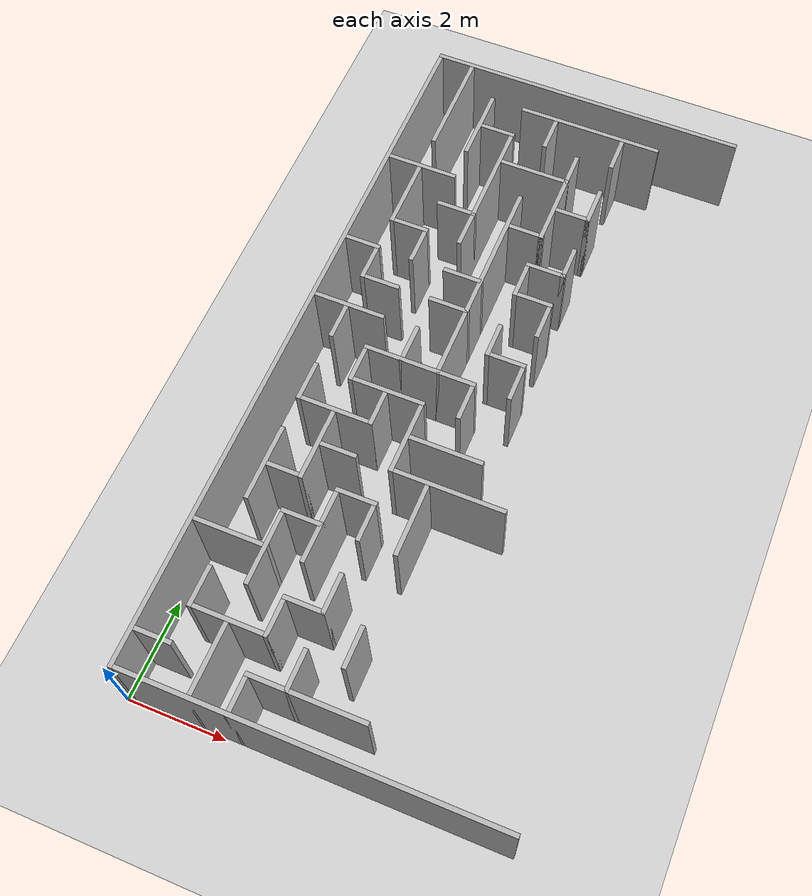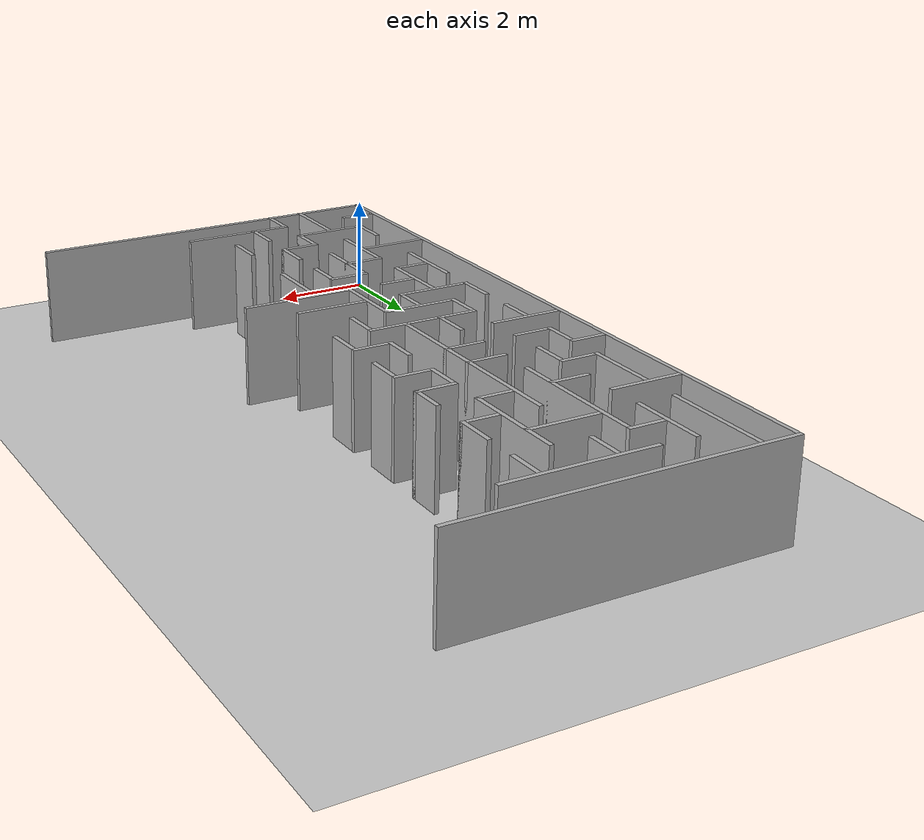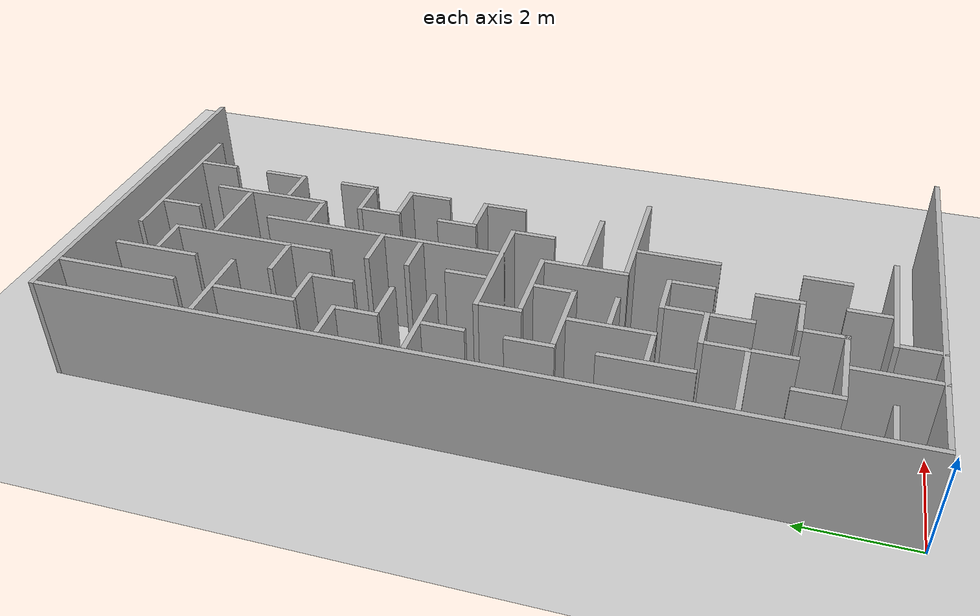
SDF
<sdf version="1.6">
 <world name="slam_world">
  <model name="ground_plane">
   <static>true</static>
   <link name="link">
    <collision name="collision">
     <geometry><plane><normal>0 0 1</normal><size>100 100</size></plane></geometry>
    </collision>
    <visual name="visual">
     <geometry><plane><normal>0 0 1</normal><size>100 100</size></plane></geometry>
     <material>
      <ambient>0.8 0.8 0.8 1</ambient>
      <diffuse>0.8 0.8 0.8 1</diffuse>
      <specular>0.8 0.8 0.8 1</specular>
     </material>
    </visual>
   </link>
  </model>
  <model name="wall_0">
   <static>true</static>
   <pose>3.425925925925926 14.907407407407408 1.0 0 0 0</pose>
   <link name="link">
    <collision name="collision">
     <geometry><box><size>6.7592592592592595 0.0925925925925926 2.0</size></box></geometry>
    </collision>
    <visual name="visual">
     <geometry><box><size>6.7592592592592595 0.0925925925925926 2.0</size></box></geometry>
     <material><ambient>0.5 0.5 0.5 1</ambient><diffuse>0.7 0.7 0.7 1</diffuse></material>
    </visual>
   </link>
  </model>
  <model name="wall_2">
   <static>true</static>
   <pose>0.0925925925925926 7.453703703703704 1.0 0 0 0</pose>
   <link name="link">
    <collision name="collision">
     <geometry><box><size>0.0925925925925926 14.814814814814817 2.0</size></box></geometry>
    </collision>
    <visual name="visual">
     <geometry><box><size>0.0925925925925926 14.814814814814817 2.0</size></box></geometry>
     <material><ambient>0.5 0.5 0.5 1</ambient><diffuse>0.7 0.7 0.7 1</diffuse></material>
    </visual>
   </link>
  </model>
  <model name="wall_3">
   <static>true</static>
   <pose>0.8333333333333334 13.750000000000002 1.0 0 0 0</pose>
   <link name="link">
    <collision name="collision">
     <geometry><box><size>0.0925925925925926 2.2222222222222223 2.0</size></box></geometry>
    </collision>
    <visual name="visual">
     <geometry><box><size>0.0925925925925926 2.2222222222222223 2.0</size></box></geometry>
     <material><ambient>0.5 0.5 0.5 1</ambient><diffuse>0.7 0.7 0.7 1</diffuse></material>
    </visual>
   </link>
  </model>
  <model name="wall_7">
   <static>true</static>
   <pose>1.5740740740740742 13.425925925925927 1.0 0 0 0</pose>
   <link name="link">
    <collision name="collision">
     <geometry><box><size>0.0925925925925926 1.5740740740740742 2.0</size></box></geometry>
    </collision>
    <visual name="visual">
     <geometry><box><size>0.0925925925925926 1.5740740740740742 2.0</size></box></geometry>
     <material><ambient>0.5 0.5 0.5 1</ambient><diffuse>0.7 0.7 0.7 1</diffuse></material>
    </visual>
   </link>
  </model>
  <model name="wall_8">
   <static>true</static>
   <pose>3.7962962962962967 14.166666666666668 1.0 0 0 0</pose>
   <link name="link">
    <collision name="collision">
     <geometry><box><size>3.055555555555556 0.0925925925925926 2.0</size></box></geometry>
    </collision>
    <visual name="visual">
     <geometry><box><size>3.055555555555556 0.0925925925925926 2.0</size></box></geometry>
     <material><ambient>0.5 0.5 0.5 1</ambient><diffuse>0.7 0.7 0.7 1</diffuse></material>
    </visual>
   </link>
  </model>
  <model name="wall_13">
   <static>true</static>
   <pose>3.055555555555556 13.750000000000002 1.0 0 0 0</pose>
   <link name="link">
    <collision name="collision">
     <geometry><box><size>0.0925925925925926 0.7407407407407408 2.0</size></box></geometry>
    </collision>
    <visual name="visual">
     <geometry><box><size>0.0925925925925926 0.7407407407407408 2.0</size></box></geometry>
     <material><ambient>0.5 0.5 0.5 1</ambient><diffuse>0.7 0.7 0.7 1</diffuse></material>
    </visual>
   </link>
  </model>
  <model name="wall_14">
   <static>true</static>
   <pose>4.537037037037037 13.750000000000002 1.0 0 0 0</pose>
   <link name="link">
    <collision name="collision">
     <geometry><box><size>0.0925925925925926 0.7407407407407408 2.0</size></box></geometry>
    </collision>
    <visual name="visual">
     <geometry><box><size>0.0925925925925926 0.7407407407407408 2.0</size></box></geometry>
     <material><ambient>0.5 0.5 0.5 1</ambient><diffuse>0.7 0.7 0.7 1</diffuse></material>
    </visual>
   </link>
  </model>
  <model name="wall_20">
   <static>true</static>
   <pose>1.990740740740741 13.425925925925927 1.0 0 0 0</pose>
   <link name="link">
    <collision name="collision">
     <geometry><box><size>0.7407407407407408 0.0925925925925926 2.0</size></box></geometry>
    </collision>
    <visual name="visual">
     <geometry><box><size>0.7407407407407408 0.0925925925925926 2.0</size></box></geometry>
     <material><ambient>0.5 0.5 0.5 1</ambient><diffuse>0.7 0.7 0.7 1</diffuse></material>
    </visual>
   </link>
  </model>
  <model name="wall_27">
   <static>true</static>
   <pose>2.314814814814815 11.898148148148149 1.0 0 0 0</pose>
   <link name="link">
    <collision name="collision">
     <geometry><box><size>0.0925925925925926 2.9629629629629632 2.0</size></box></geometry>
    </collision>
    <visual name="visual">
     <geometry><box><size>0.0925925925925926 2.9629629629629632 2.0</size></box></geometry>
     <material><ambient>0.5 0.5 0.5 1</ambient><diffuse>0.7 0.7 0.7 1</diffuse></material>
    </visual>
   </link>
  </model>
  <model name="wall_28">
   <static>true</static>
   <pose>3.7962962962962967 12.268518518518519 1.0 0 0 0</pose>
   <link name="link">
    <collision name="collision">
     <geometry><box><size>0.0925925925925926 2.2222222222222223 2.0</size></box></geometry>
    </collision>
    <visual name="visual">
     <geometry><box><size>0.0925925925925926 2.2222222222222223 2.0</size></box></geometry>
     <material><ambient>0.5 0.5 0.5 1</ambient><diffuse>0.7 0.7 0.7 1</diffuse></material>
    </visual>
   </link>
  </model>
  <model name="wall_33">
   <static>true</static>
   <pose>3.101851851851852 12.685185185185187 1.0 0 0 0</pose>
   <link name="link">
    <collision name="collision">
     <geometry><box><size>1.4814814814814816 0.0925925925925926 2.0</size></box></geometry>
    </collision>
    <visual name="visual">
     <geometry><box><size>1.4814814814814816 0.0925925925925926 2.0</size></box></geometry>
     <material><ambient>0.5 0.5 0.5 1</ambient><diffuse>0.7 0.7 0.7 1</diffuse></material>
    </visual>
   </link>
  </model>
  <model name="wall_34">
   <static>true</static>
   <pose>4.537037037037037 12.314814814814817 1.0 0 0 0</pose>
   <link name="link">
    <collision name="collision">
     <geometry><box><size>0.0925925925925926 0.8333333333333334 2.0</size></box></geometry>
    </collision>
    <visual name="visual">
     <geometry><box><size>0.0925925925925926 0.8333333333333334 2.0</size></box></geometry>
     <material><ambient>0.5 0.5 0.5 1</ambient><diffuse>0.7 0.7 0.7 1</diffuse></material>
    </visual>
   </link>
  </model>
  <model name="wall_39">
   <static>true</static>
   <pose>0.8796296296296298 11.944444444444446 1.0 0 0 0</pose>
   <link name="link">
    <collision name="collision">
     <geometry><box><size>1.4814814814814816 0.0925925925925926 2.0</size></box></geometry>
    </collision>
    <visual name="visual">
     <geometry><box><size>1.4814814814814816 0.0925925925925926 2.0</size></box></geometry>
     <material><ambient>0.5 0.5 0.5 1</ambient><diffuse>0.7 0.7 0.7 1</diffuse></material>
    </visual>
   </link>
  </model>
  <model name="wall_40">
   <static>true</static>
   <pose>3.055555555555556 9.722222222222223 1.0 0 0 0</pose>
   <link name="link">
    <collision name="collision">
     <geometry><box><size>0.0925925925925926 4.537037037037037 2.0</size></box></geometry>
    </collision>
    <visual name="visual">
     <geometry><box><size>0.0925925925925926 4.537037037037037 2.0</size></box></geometry>
     <material><ambient>0.5 0.5 0.5 1</ambient><diffuse>0.7 0.7 0.7 1</diffuse></material>
    </visual>
   </link>
  </model>
  <model name="wall_41">
   <static>true</static>
   <pose>4.212962962962964 11.944444444444446 1.0 0 0 0</pose>
   <link name="link">
    <collision name="collision">
     <geometry><box><size>0.7407407407407408 0.0925925925925926 2.0</size></box></geometry>
    </collision>
    <visual name="visual">
     <geometry><box><size>0.7407407407407408 0.0925925925925926 2.0</size></box></geometry>
     <material><ambient>0.5 0.5 0.5 1</ambient><diffuse>0.7 0.7 0.7 1</diffuse></material>
    </visual>
   </link>
  </model>
  <model name="wall_44">
   <static>true</static>
   <pose>0.8333333333333334 11.157407407407408 1.0 0 0 0</pose>
   <link name="link">
    <collision name="collision">
     <geometry><box><size>0.0925925925925926 1.4814814814814816 2.0</size></box></geometry>
    </collision>
    <visual name="visual">
     <geometry><box><size>0.0925925925925926 1.4814814814814816 2.0</size></box></geometry>
     <material><ambient>0.5 0.5 0.5 1</ambient><diffuse>0.7 0.7 0.7 1</diffuse></material>
    </visual>
   </link>
  </model>
  <model name="wall_46">
   <static>true</static>
   <pose>1.9444444444444446 11.203703703703704 1.0 0 0 0</pose>
   <link name="link">
    <collision name="collision">
     <geometry><box><size>0.8333333333333334 0.0925925925925926 2.0</size></box></geometry>
    </collision>
    <visual name="visual">
     <geometry><box><size>0.8333333333333334 0.0925925925925926 2.0</size></box></geometry>
     <material><ambient>0.5 0.5 0.5 1</ambient><diffuse>0.7 0.7 0.7 1</diffuse></material>
    </visual>
   </link>
  </model>
  <model name="wall_47">
   <static>true</static>
   <pose>3.4722222222222228 11.203703703703704 1.0 0 0 0</pose>
   <link name="link">
    <collision name="collision">
     <geometry><box><size>0.7407407407407408 0.0925925925925926 2.0</size></box></geometry>
    </collision>
    <visual name="visual">
     <geometry><box><size>0.7407407407407408 0.0925925925925926 2.0</size></box></geometry>
     <material><ambient>0.5 0.5 0.5 1</ambient><diffuse>0.7 0.7 0.7 1</diffuse></material>
    </visual>
   </link>
  </model>
  <model name="wall_53">
   <static>true</static>
   <pose>4.537037037037037 10.787037037037038 1.0 0 0 0</pose>
   <link name="link">
    <collision name="collision">
     <geometry><box><size>0.0925925925925926 0.7407407407407408 2.0</size></box></geometry>
    </collision>
    <visual name="visual">
     <geometry><box><size>0.0925925925925926 0.7407407407407408 2.0</size></box></geometry>
     <material><ambient>0.5 0.5 0.5 1</ambient><diffuse>0.7 0.7 0.7 1</diffuse></material>
    </visual>
   </link>
  </model>
  <model name="wall_55">
   <static>true</static>
   <pose>1.2500000000000002 10.462962962962964 1.0 0 0 0</pose>
   <link name="link">
    <collision name="collision">
     <geometry><box><size>0.7407407407407408 0.0925925925925926 2.0</size></box></geometry>
    </collision>
    <visual name="visual">
     <geometry><box><size>0.7407407407407408 0.0925925925925926 2.0</size></box></geometry>
     <material><ambient>0.5 0.5 0.5 1</ambient><diffuse>0.7 0.7 0.7 1</diffuse></material>
    </visual>
   </link>
  </model>
  <model name="wall_56">
   <static>true</static>
   <pose>4.166666666666667 10.462962962962964 1.0 0 0 0</pose>
   <link name="link">
    <collision name="collision">
     <geometry><box><size>0.8333333333333334 0.0925925925925926 2.0</size></box></geometry>
    </collision>
    <visual name="visual">
     <geometry><box><size>0.8333333333333334 0.0925925925925926 2.0</size></box></geometry>
     <material><ambient>0.5 0.5 0.5 1</ambient><diffuse>0.7 0.7 0.7 1</diffuse></material>
    </visual>
   </link>
  </model>
  <model name="wall_63">
   <static>true</static>
   <pose>1.5740740740740742 10.046296296296298 1.0 0 0 0</pose>
   <link name="link">
    <collision name="collision">
     <geometry><box><size>0.0925925925925926 0.7407407407407408 2.0</size></box></geometry>
    </collision>
    <visual name="visual">
     <geometry><box><size>0.0925925925925926 0.7407407407407408 2.0</size></box></geometry>
     <material><ambient>0.5 0.5 0.5 1</ambient><diffuse>0.7 0.7 0.7 1</diffuse></material>
    </visual>
   </link>
  </model>
  <model name="wall_64">
   <static>true</static>
   <pose>3.7962962962962967 10.046296296296298 1.0 0 0 0</pose>
   <link name="link">
    <collision name="collision">
     <geometry><box><size>0.0925925925925926 0.7407407407407408 2.0</size></box></geometry>
    </collision>
    <visual name="visual">
     <geometry><box><size>0.0925925925925926 0.7407407407407408 2.0</size></box></geometry>
     <material><ambient>0.5 0.5 0.5 1</ambient><diffuse>0.7 0.7 0.7 1</diffuse></material>
    </visual>
   </link>
  </model>
  <model name="wall_66">
   <static>true</static>
   <pose>0.5092592592592593 9.722222222222223 1.0 0 0 0</pose>
   <link name="link">
    <collision name="collision">
     <geometry><box><size>0.7407407407407408 0.0925925925925926 2.0</size></box></geometry>
    </collision>
    <visual name="visual">
     <geometry><box><size>0.7407407407407408 0.0925925925925926 2.0</size></box></geometry>
     <material><ambient>0.5 0.5 0.5 1</ambient><diffuse>0.7 0.7 0.7 1</diffuse></material>
    </visual>
   </link>
  </model>
  <model name="wall_67">
   <static>true</static>
   <pose>2.6851851851851856 9.722222222222223 1.0 0 0 0</pose>
   <link name="link">
    <collision name="collision">
     <geometry><box><size>0.8333333333333334 0.0925925925925926 2.0</size></box></geometry>
    </collision>
    <visual name="visual">
     <geometry><box><size>0.8333333333333334 0.0925925925925926 2.0</size></box></geometry>
     <material><ambient>0.5 0.5 0.5 1</ambient><diffuse>0.7 0.7 0.7 1</diffuse></material>
    </visual>
   </link>
  </model>
  <model name="wall_68">
   <static>true</static>
   <pose>4.212962962962964 9.722222222222223 1.0 0 0 0</pose>
   <link name="link">
    <collision name="collision">
     <geometry><box><size>0.7407407407407408 0.0925925925925926 2.0</size></box></geometry>
    </collision>
    <visual name="visual">
     <geometry><box><size>0.7407407407407408 0.0925925925925926 2.0</size></box></geometry>
     <material><ambient>0.5 0.5 0.5 1</ambient><diffuse>0.7 0.7 0.7 1</diffuse></material>
    </visual>
   </link>
  </model>
  <model name="wall_74">
   <static>true</static>
   <pose>0.8333333333333334 9.305555555555557 1.0 0 0 0</pose>
   <link name="link">
    <collision name="collision">
     <geometry><box><size>0.0925925925925926 0.7407407407407408 2.0</size></box></geometry>
    </collision>
    <visual name="visual">
     <geometry><box><size>0.0925925925925926 0.7407407407407408 2.0</size></box></geometry>
     <material><ambient>0.5 0.5 0.5 1</ambient><diffuse>0.7 0.7 0.7 1</diffuse></material>
    </visual>
   </link>
  </model>
  <model name="wall_75">
   <static>true</static>
   <pose>4.537037037037037 9.305555555555557 1.0 0 0 0</pose>
   <link name="link">
    <collision name="collision">
     <geometry><box><size>0.0925925925925926 0.7407407407407408 2.0</size></box></geometry>
    </collision>
    <visual name="visual">
     <geometry><box><size>0.0925925925925926 0.7407407407407408 2.0</size></box></geometry>
     <material><ambient>0.5 0.5 0.5 1</ambient><diffuse>0.7 0.7 0.7 1</diffuse></material>
    </visual>
   </link>
  </model>
  <model name="wall_80">
   <static>true</static>
   <pose>1.2500000000000002 8.981481481481483 1.0 0 0 0</pose>
   <link name="link">
    <collision name="collision">
     <geometry><box><size>0.7407407407407408 0.0925925925925926 2.0</size></box></geometry>
    </collision>
    <visual name="visual">
     <geometry><box><size>0.7407407407407408 0.0925925925925926 2.0</size></box></geometry>
     <material><ambient>0.5 0.5 0.5 1</ambient><diffuse>0.7 0.7 0.7 1</diffuse></material>
    </visual>
   </link>
  </model>
  <model name="wall_81">
   <static>true</static>
   <pose>2.6851851851851856 8.981481481481483 1.0 0 0 0</pose>
   <link name="link">
    <collision name="collision">
     <geometry><box><size>0.8333333333333334 0.0925925925925926 2.0</size></box></geometry>
    </collision>
    <visual name="visual">
     <geometry><box><size>0.8333333333333334 0.0925925925925926 2.0</size></box></geometry>
     <material><ambient>0.5 0.5 0.5 1</ambient><diffuse>0.7 0.7 0.7 1</diffuse></material>
    </visual>
   </link>
  </model>
  <model name="wall_87">
   <static>true</static>
   <pose>3.7962962962962967 8.564814814814815 1.0 0 0 0</pose>
   <link name="link">
    <collision name="collision">
     <geometry><box><size>0.0925925925925926 0.7407407407407408 2.0</size></box></geometry>
    </collision>
    <visual name="visual">
     <geometry><box><size>0.0925925925925926 0.7407407407407408 2.0</size></box></geometry>
     <material><ambient>0.5 0.5 0.5 1</ambient><diffuse>0.7 0.7 0.7 1</diffuse></material>
    </visual>
   </link>
  </model>
  <model name="wall_91">
   <static>true</static>
   <pose>0.8796296296296298 8.240740740740742 1.0 0 0 0</pose>
   <link name="link">
    <collision name="collision">
     <geometry><box><size>1.4814814814814816 0.0925925925925926 2.0</size></box></geometry>
    </collision>
    <visual name="visual">
     <geometry><box><size>1.4814814814814816 0.0925925925925926 2.0</size></box></geometry>
     <material><ambient>0.5 0.5 0.5 1</ambient><diffuse>0.7 0.7 0.7 1</diffuse></material>
    </visual>
   </link>
  </model>
  <model name="wall_92">
   <static>true</static>
   <pose>2.314814814814815 7.870370370370371 1.0 0 0 0</pose>
   <link name="link">
    <collision name="collision">
     <geometry><box><size>0.0925925925925926 0.8333333333333334 2.0</size></box></geometry>
    </collision>
    <visual name="visual">
     <geometry><box><size>0.0925925925925926 0.8333333333333334 2.0</size></box></geometry>
     <material><ambient>0.5 0.5 0.5 1</ambient><diffuse>0.7 0.7 0.7 1</diffuse></material>
    </visual>
   </link>
  </model>
  <model name="wall_93">
   <static>true</static>
   <pose>4.212962962962964 8.240740740740742 1.0 0 0 0</pose>
   <link name="link">
    <collision name="collision">
     <geometry><box><size>0.7407407407407408 0.0925925925925926 2.0</size></box></geometry>
    </collision>
    <visual name="visual">
     <geometry><box><size>0.7407407407407408 0.0925925925925926 2.0</size></box></geometry>
     <material><ambient>0.5 0.5 0.5 1</ambient><diffuse>0.7 0.7 0.7 1</diffuse></material>
    </visual>
   </link>
  </model>
  <model name="wall_97">
   <static>true</static>
   <pose>0.8333333333333334 7.824074074074074 1.0 0 0 0</pose>
   <link name="link">
    <collision name="collision">
     <geometry><box><size>0.0925925925925926 0.7407407407407408 2.0</size></box></geometry>
    </collision>
    <visual name="visual">
     <geometry><box><size>0.0925925925925926 0.7407407407407408 2.0</size></box></geometry>
     <material><ambient>0.5 0.5 0.5 1</ambient><diffuse>0.7 0.7 0.7 1</diffuse></material>
    </visual>
   </link>
  </model>
  <model name="wall_98">
   <static>true</static>
   <pose>4.537037037037037 7.824074074074074 1.0 0 0 0</pose>
   <link name="link">
    <collision name="collision">
     <geometry><box><size>0.0925925925925926 0.7407407407407408 2.0</size></box></geometry>
    </collision>
    <visual name="visual">
     <geometry><box><size>0.0925925925925926 0.7407407407407408 2.0</size></box></geometry>
     <material><ambient>0.5 0.5 0.5 1</ambient><diffuse>0.7 0.7 0.7 1</diffuse></material>
    </visual>
   </link>
  </model>
  <model name="wall_102">
   <static>true</static>
   <pose>2.6851851851851856 7.500000000000001 1.0 0 0 0</pose>
   <link name="link">
    <collision name="collision">
     <geometry><box><size>2.314814814814815 0.0925925925925926 2.0</size></box></geometry>
    </collision>
    <visual name="visual">
     <geometry><box><size>2.314814814814815 0.0925925925925926 2.0</size></box></geometry>
     <material><ambient>0.5 0.5 0.5 1</ambient><diffuse>0.7 0.7 0.7 1</diffuse></material>
    </visual>
   </link>
  </model>
  <model name="wall_108">
   <static>true</static>
   <pose>1.5740740740740742 7.083333333333334 1.0 0 0 0</pose>
   <link name="link">
    <collision name="collision">
     <geometry><box><size>0.0925925925925926 0.7407407407407408 2.0</size></box></geometry>
    </collision>
    <visual name="visual">
     <geometry><box><size>0.0925925925925926 0.7407407407407408 2.0</size></box></geometry>
     <material><ambient>0.5 0.5 0.5 1</ambient><diffuse>0.7 0.7 0.7 1</diffuse></material>
    </visual>
   </link>
  </model>
  <model name="wall_109">
   <static>true</static>
   <pose>3.7962962962962967 7.083333333333334 1.0 0 0 0</pose>
   <link name="link">
    <collision name="collision">
     <geometry><box><size>0.0925925925925926 0.7407407407407408 2.0</size></box></geometry>
    </collision>
    <visual name="visual">
     <geometry><box><size>0.0925925925925926 0.7407407407407408 2.0</size></box></geometry>
     <material><ambient>0.5 0.5 0.5 1</ambient><diffuse>0.7 0.7 0.7 1</diffuse></material>
    </visual>
   </link>
  </model>
  <model name="wall_111">
   <static>true</static>
   <pose>0.8333333333333334 6.388888888888889 1.0 0 0 0</pose>
   <link name="link">
    <collision name="collision">
     <geometry><box><size>0.0925925925925926 0.8333333333333334 2.0</size></box></geometry>
    </collision>
    <visual name="visual">
     <geometry><box><size>0.0925925925925926 0.8333333333333334 2.0</size></box></geometry>
     <material><ambient>0.5 0.5 0.5 1</ambient><diffuse>0.7 0.7 0.7 1</diffuse></material>
    </visual>
   </link>
  </model>
  <model name="wall_112">
   <static>true</static>
   <pose>2.361111111111111 6.7592592592592595 1.0 0 0 0</pose>
   <link name="link">
    <collision name="collision">
     <geometry><box><size>1.4814814814814816 0.0925925925925926 2.0</size></box></geometry>
    </collision>
    <visual name="visual">
     <geometry><box><size>1.4814814814814816 0.0925925925925926 2.0</size></box></geometry>
     <material><ambient>0.5 0.5 0.5 1</ambient><diffuse>0.7 0.7 0.7 1</diffuse></material>
    </visual>
   </link>
  </model>
  <model name="wall_116">
   <static>true</static>
   <pose>2.314814814814815 6.3425925925925934 1.0 0 0 0</pose>
   <link name="link">
    <collision name="collision">
     <geometry><box><size>0.0925925925925926 0.7407407407407408 2.0</size></box></geometry>
    </collision>
    <visual name="visual">
     <geometry><box><size>0.0925925925925926 0.7407407407407408 2.0</size></box></geometry>
     <material><ambient>0.5 0.5 0.5 1</ambient><diffuse>0.7 0.7 0.7 1</diffuse></material>
    </visual>
   </link>
  </model>
  <model name="wall_117">
   <static>true</static>
   <pose>3.055555555555556 5.972222222222223 1.0 0 0 0</pose>
   <link name="link">
    <collision name="collision">
     <geometry><box><size>0.0925925925925926 1.4814814814814816 2.0</size></box></geometry>
    </collision>
    <visual name="visual">
     <geometry><box><size>0.0925925925925926 1.4814814814814816 2.0</size></box></geometry>
     <material><ambient>0.5 0.5 0.5 1</ambient><diffuse>0.7 0.7 0.7 1</diffuse></material>
    </visual>
   </link>
  </model>
  <model name="wall_121">
   <static>true</static>
   <pose>1.6203703703703705 6.018518518518519 1.0 0 0 0</pose>
   <link name="link">
    <collision name="collision">
     <geometry><box><size>1.4814814814814816 0.0925925925925926 2.0</size></box></geometry>
    </collision>
    <visual name="visual">
     <geometry><box><size>1.4814814814814816 0.0925925925925926 2.0</size></box></geometry>
     <material><ambient>0.5 0.5 0.5 1</ambient><diffuse>0.7 0.7 0.7 1</diffuse></material>
    </visual>
   </link>
  </model>
  <model name="wall_122">
   <static>true</static>
   <pose>3.842592592592593 6.018518518518519 1.0 0 0 0</pose>
   <link name="link">
    <collision name="collision">
     <geometry><box><size>1.4814814814814816 0.0925925925925926 2.0</size></box></geometry>
    </collision>
    <visual name="visual">
     <geometry><box><size>1.4814814814814816 0.0925925925925926 2.0</size></box></geometry>
     <material><ambient>0.5 0.5 0.5 1</ambient><diffuse>0.7 0.7 0.7 1</diffuse></material>
    </visual>
   </link>
  </model>
  <model name="wall_129">
   <static>true</static>
   <pose>1.5740740740740742 5.231481481481482 1.0 0 0 0</pose>
   <link name="link">
    <collision name="collision">
     <geometry><box><size>0.0925925925925926 1.4814814814814816 2.0</size></box></geometry>
    </collision>
    <visual name="visual">
     <geometry><box><size>0.0925925925925926 1.4814814814814816 2.0</size></box></geometry>
     <material><ambient>0.5 0.5 0.5 1</ambient><diffuse>0.7 0.7 0.7 1</diffuse></material>
    </visual>
   </link>
  </model>
  <model name="wall_133">
   <static>true</static>
   <pose>0.8333333333333334 4.537037037037037 1.0 0 0 0</pose>
   <link name="link">
    <collision name="collision">
     <geometry><box><size>0.0925925925925926 1.5740740740740742 2.0</size></box></geometry>
    </collision>
    <visual name="visual">
     <geometry><box><size>0.0925925925925926 1.5740740740740742 2.0</size></box></geometry>
     <material><ambient>0.5 0.5 0.5 1</ambient><diffuse>0.7 0.7 0.7 1</diffuse></material>
    </visual>
   </link>
  </model>
  <model name="wall_134">
   <static>true</static>
   <pose>1.990740740740741 5.277777777777779 1.0 0 0 0</pose>
   <link name="link">
    <collision name="collision">
     <geometry><box><size>0.7407407407407408 0.0925925925925926 2.0</size></box></geometry>
    </collision>
    <visual name="visual">
     <geometry><box><size>0.7407407407407408 0.0925925925925926 2.0</size></box></geometry>
     <material><ambient>0.5 0.5 0.5 1</ambient><diffuse>0.7 0.7 0.7 1</diffuse></material>
    </visual>
   </link>
  </model>
  <model name="wall_135">
   <static>true</static>
   <pose>4.212962962962964 5.277777777777779 1.0 0 0 0</pose>
   <link name="link">
    <collision name="collision">
     <geometry><box><size>2.2222222222222223 0.0925925925925926 2.0</size></box></geometry>
    </collision>
    <visual name="visual">
     <geometry><box><size>2.2222222222222223 0.0925925925925926 2.0</size></box></geometry>
     <material><ambient>0.5 0.5 0.5 1</ambient><diffuse>0.7 0.7 0.7 1</diffuse></material>
    </visual>
   </link>
  </model>
  <model name="wall_140">
   <static>true</static>
   <pose>3.7962962962962967 4.490740740740741 1.0 0 0 0</pose>
   <link name="link">
    <collision name="collision">
     <geometry><box><size>0.0925925925925926 1.4814814814814816 2.0</size></box></geometry>
    </collision>
    <visual name="visual">
     <geometry><box><size>0.0925925925925926 1.4814814814814816 2.0</size></box></geometry>
     <material><ambient>0.5 0.5 0.5 1</ambient><diffuse>0.7 0.7 0.7 1</diffuse></material>
    </visual>
   </link>
  </model>
  <model name="wall_146">
   <static>true</static>
   <pose>1.2500000000000002 4.537037037037037 1.0 0 0 0</pose>
   <link name="link">
    <collision name="collision">
     <geometry><box><size>0.7407407407407408 0.0925925925925926 2.0</size></box></geometry>
    </collision>
    <visual name="visual">
     <geometry><box><size>0.7407407407407408 0.0925925925925926 2.0</size></box></geometry>
     <material><ambient>0.5 0.5 0.5 1</ambient><diffuse>0.7 0.7 0.7 1</diffuse></material>
    </visual>
   </link>
  </model>
  <model name="wall_147">
   <static>true</static>
   <pose>2.6851851851851856 4.537037037037037 1.0 0 0 0</pose>
   <link name="link">
    <collision name="collision">
     <geometry><box><size>0.8333333333333334 0.0925925925925926 2.0</size></box></geometry>
    </collision>
    <visual name="visual">
     <geometry><box><size>0.8333333333333334 0.0925925925925926 2.0</size></box></geometry>
     <material><ambient>0.5 0.5 0.5 1</ambient><diffuse>0.7 0.7 0.7 1</diffuse></material>
    </visual>
   </link>
  </model>
  <model name="wall_152">
   <static>true</static>
   <pose>2.314814814814815 3.7500000000000004 1.0 0 0 0</pose>
   <link name="link">
    <collision name="collision">
     <geometry><box><size>0.0925925925925926 1.4814814814814816 2.0</size></box></geometry>
    </collision>
    <visual name="visual">
     <geometry><box><size>0.0925925925925926 1.4814814814814816 2.0</size></box></geometry>
     <material><ambient>0.5 0.5 0.5 1</ambient><diffuse>0.7 0.7 0.7 1</diffuse></material>
    </visual>
   </link>
  </model>
  <model name="wall_153">
   <static>true</static>
   <pose>3.055555555555556 4.120370370370371 1.0 0 0 0</pose>
   <link name="link">
    <collision name="collision">
     <geometry><box><size>0.0925925925925926 0.7407407407407408 2.0</size></box></geometry>
    </collision>
    <visual name="visual">
     <geometry><box><size>0.0925925925925926 0.7407407407407408 2.0</size></box></geometry>
     <material><ambient>0.5 0.5 0.5 1</ambient><diffuse>0.7 0.7 0.7 1</diffuse></material>
    </visual>
   </link>
  </model>
  <model name="wall_157">
   <static>true</static>
   <pose>1.9444444444444446 3.7962962962962967 1.0 0 0 0</pose>
   <link name="link">
    <collision name="collision">
     <geometry><box><size>0.8333333333333334 0.0925925925925926 2.0</size></box></geometry>
    </collision>
    <visual name="visual">
     <geometry><box><size>0.8333333333333334 0.0925925925925926 2.0</size></box></geometry>
     <material><ambient>0.5 0.5 0.5 1</ambient><diffuse>0.7 0.7 0.7 1</diffuse></material>
    </visual>
   </link>
  </model>
  <model name="wall_162">
   <static>true</static>
   <pose>1.5740740740740742 3.0092592592592595 1.0 0 0 0</pose>
   <link name="link">
    <collision name="collision">
     <geometry><box><size>0.0925925925925926 1.4814814814814816 2.0</size></box></geometry>
    </collision>
    <visual name="visual">
     <geometry><box><size>0.0925925925925926 1.4814814814814816 2.0</size></box></geometry>
     <material><ambient>0.5 0.5 0.5 1</ambient><diffuse>0.7 0.7 0.7 1</diffuse></material>
    </visual>
   </link>
  </model>
  <model name="wall_164">
   <static>true</static>
   <pose>0.8796296296296298 3.055555555555556 1.0 0 0 0</pose>
   <link name="link">
    <collision name="collision">
     <geometry><box><size>1.4814814814814816 0.0925925925925926 2.0</size></box></geometry>
    </collision>
    <visual name="visual">
     <geometry><box><size>1.4814814814814816 0.0925925925925926 2.0</size></box></geometry>
     <material><ambient>0.5 0.5 0.5 1</ambient><diffuse>0.7 0.7 0.7 1</diffuse></material>
    </visual>
   </link>
  </model>
  <model name="wall_165">
   <static>true</static>
   <pose>3.055555555555556 2.6851851851851856 1.0 0 0 0</pose>
   <link name="link">
    <collision name="collision">
     <geometry><box><size>0.0925925925925926 0.8333333333333334 2.0</size></box></geometry>
    </collision>
    <visual name="visual">
     <geometry><box><size>0.0925925925925926 0.8333333333333334 2.0</size></box></geometry>
     <material><ambient>0.5 0.5 0.5 1</ambient><diffuse>0.7 0.7 0.7 1</diffuse></material>
    </visual>
   </link>
  </model>
  <model name="wall_177">
   <static>true</static>
   <pose>0.8333333333333334 1.9444444444444446 1.0 0 0 0</pose>
   <link name="link">
    <collision name="collision">
     <geometry><box><size>0.0925925925925926 0.8333333333333334 2.0</size></box></geometry>
    </collision>
    <visual name="visual">
     <geometry><box><size>0.0925925925925926 0.8333333333333334 2.0</size></box></geometry>
     <material><ambient>0.5 0.5 0.5 1</ambient><diffuse>0.7 0.7 0.7 1</diffuse></material>
    </visual>
   </link>
  </model>
  <model name="wall_178">
   <static>true</static>
   <pose>2.6851851851851856 2.314814814814815 1.0 0 0 0</pose>
   <link name="link">
    <collision name="collision">
     <geometry><box><size>0.8333333333333334 0.0925925925925926 2.0</size></box></geometry>
    </collision>
    <visual name="visual">
     <geometry><box><size>0.8333333333333334 0.0925925925925926 2.0</size></box></geometry>
     <material><ambient>0.5 0.5 0.5 1</ambient><diffuse>0.7 0.7 0.7 1</diffuse></material>
    </visual>
   </link>
  </model>
  <model name="wall_179">
   <static>true</static>
   <pose>3.7962962962962967 1.9444444444444446 1.0 0 0 0</pose>
   <link name="link">
    <collision name="collision">
     <geometry><box><size>0.0925925925925926 0.8333333333333334 2.0</size></box></geometry>
    </collision>
    <visual name="visual">
     <geometry><box><size>0.0925925925925926 0.8333333333333334 2.0</size></box></geometry>
     <material><ambient>0.5 0.5 0.5 1</ambient><diffuse>0.7 0.7 0.7 1</diffuse></material>
    </visual>
   </link>
  </model>
  <model name="wall_184">
   <static>true</static>
   <pose>2.314814814814815 1.8981481481481484 1.0 0 0 0</pose>
   <link name="link">
    <collision name="collision">
     <geometry><box><size>0.0925925925925926 0.7407407407407408 2.0</size></box></geometry>
    </collision>
    <visual name="visual">
     <geometry><box><size>0.0925925925925926 0.7407407407407408 2.0</size></box></geometry>
     <material><ambient>0.5 0.5 0.5 1</ambient><diffuse>0.7 0.7 0.7 1</diffuse></material>
    </visual>
   </link>
  </model>
  <model name="wall_187">
   <static>true</static>
   <pose>1.6203703703703705 1.5740740740740742 1.0 0 0 0</pose>
   <link name="link">
    <collision name="collision">
     <geometry><box><size>1.4814814814814816 0.0925925925925926 2.0</size></box></geometry>
    </collision>
    <visual name="visual">
     <geometry><box><size>1.4814814814814816 0.0925925925925926 2.0</size></box></geometry>
     <material><ambient>0.5 0.5 0.5 1</ambient><diffuse>0.7 0.7 0.7 1</diffuse></material>
    </visual>
   </link>
  </model>
  <model name="wall_188">
   <static>true</static>
   <pose>3.055555555555556 1.2037037037037037 1.0 0 0 0</pose>
   <link name="link">
    <collision name="collision">
     <geometry><box><size>0.0925925925925926 0.8333333333333334 2.0</size></box></geometry>
    </collision>
    <visual name="visual">
     <geometry><box><size>0.0925925925925926 0.8333333333333334 2.0</size></box></geometry>
     <material><ambient>0.5 0.5 0.5 1</ambient><diffuse>0.7 0.7 0.7 1</diffuse></material>
    </visual>
   </link>
  </model>
  <model name="wall_196">
   <static>true</static>
   <pose>1.5740740740740742 0.7870370370370371 1.0 0 0 0</pose>
   <link name="link">
    <collision name="collision">
     <geometry><box><size>0.0925925925925926 1.4814814814814816 2.0</size></box></geometry>
    </collision>
    <visual name="visual">
     <geometry><box><size>0.0925925925925926 1.4814814814814816 2.0</size></box></geometry>
     <material><ambient>0.5 0.5 0.5 1</ambient><diffuse>0.7 0.7 0.7 1</diffuse></material>
    </visual>
   </link>
  </model>
  <model name="wall_198">
   <static>true</static>
   <pose>0.5092592592592593 0.8333333333333334 1.0 0 0 0</pose>
   <link name="link">
    <collision name="collision">
     <geometry><box><size>0.7407407407407408 0.0925925925925926 2.0</size></box></geometry>
    </collision>
    <visual name="visual">
     <geometry><box><size>0.7407407407407408 0.0925925925925926 2.0</size></box></geometry>
     <material><ambient>0.5 0.5 0.5 1</ambient><diffuse>0.7 0.7 0.7 1</diffuse></material>
    </visual>
   </link>
  </model>
  <model name="wall_199">
   <static>true</static>
   <pose>3.425925925925926 0.8333333333333334 1.0 0 0 0</pose>
   <link name="link">
    <collision name="collision">
     <geometry><box><size>2.314814814814815 0.0925925925925926 2.0</size></box></geometry>
    </collision>
    <visual name="visual">
     <geometry><box><size>2.314814814814815 0.0925925925925926 2.0</size></box></geometry>
     <material><ambient>0.5 0.5 0.5 1</ambient><diffuse>0.7 0.7 0.7 1</diffuse></material>
    </visual>
   </link>
  </model>
  <model name="wall_203">
   <static>true</static>
   <pose>2.314814814814815 0.4166666666666667 1.0 0 0 0</pose>
   <link name="link">
    <collision name="collision">
     <geometry><box><size>0.0925925925925926 0.7407407407407408 2.0</size></box></geometry>
    </collision>
    <visual name="visual">
     <geometry><box><size>0.0925925925925926 0.7407407407407408 2.0</size></box></geometry>
     <material><ambient>0.5 0.5 0.5 1</ambient><diffuse>0.7 0.7 0.7 1</diffuse></material>
    </visual>
   </link>
  </model>
  <model name="wall_206">
   <static>true</static>
   <pose>3.842592592592593 0.0925925925925926 1.0 0 0 0</pose>
   <link name="link">
    <collision name="collision">
     <geometry><box><size>7.407407407407408 0.0925925925925926 2.0</size></box></geometry>
    </collision>
    <visual name="visual">
     <geometry><box><size>7.407407407407408 0.0925925925925926 2.0</size></box></geometry>
     <material><ambient>0.5 0.5 0.5 1</ambient><diffuse>0.7 0.7 0.7 1</diffuse></material>
    </visual>
   </link>
  </model>
 </world>
</sdf>
